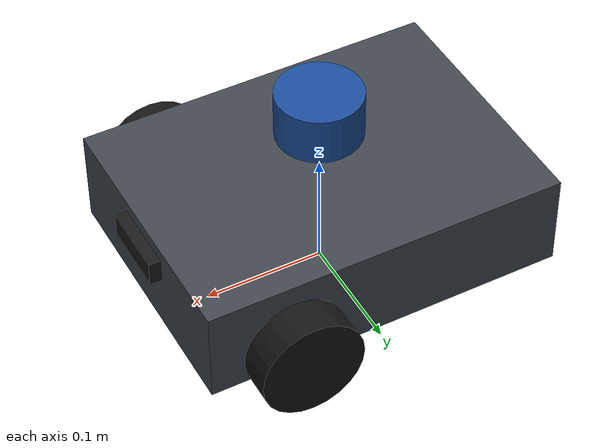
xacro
<?xml version="1.0"?>
<robot xmlns:xacro="http://www.ros.org/wiki/xacro" name="roboto">

  <!-- === Geometrie, d'apres la nomenclature ============================== -->

  <xacro:property name="wheel_radius" value="0.0425"/>   <!-- roues de 85 mm -->
  <xacro:property name="wheel_width" value="0.03"/>
  <xacro:property name="wheel_mass" value="0.15"/>
  <xacro:property name="wheel_separation" value="0.25"/>
  <xacro:property name="wheel_offset_x" value="0.08"/>

  <xacro:property name="chassis_length" value="0.30"/>
  <xacro:property name="chassis_width" value="0.22"/>
  <xacro:property name="chassis_height" value="0.08"/>
  <!-- Chassis, calculateur, microcontroleur, driver et batterie. -->
  <xacro:property name="chassis_mass" value="2.6"/>

  <xacro:property name="caster_radius" value="0.02"/>
  <xacro:property name="caster_mass" value="0.05"/>
  <xacro:property name="caster_offset_x" value="-0.10"/>

  <xacro:property name="lidar_height" value="0.09"/>
  <!-- `pi` est fourni par xacro : le redefinir provoque un avertissement. -->
  <xacro:property name="half_turn" value="${pi / 2.0}"/>

  <!-- === Macros d'inertie ================================================= -->

  <xacro:macro name="box_inertia" params="mass x y z">
    <inertial>
      <mass value="${mass}"/>
      <inertia
        ixx="${mass * (y*y + z*z) / 12.0}" ixy="0.0" ixz="0.0"
        iyy="${mass * (x*x + z*z) / 12.0}" iyz="0.0"
        izz="${mass * (x*x + y*y) / 12.0}"/>
    </inertial>
  </xacro:macro>

  <xacro:macro name="cylinder_inertia" params="mass radius length">
    <inertial>
      <mass value="${mass}"/>
      <inertia
        ixx="${mass * (3.0*radius*radius + length*length) / 12.0}" ixy="0.0" ixz="0.0"
        iyy="${mass * (3.0*radius*radius + length*length) / 12.0}" iyz="0.0"
        izz="${mass * radius * radius / 2.0}"/>
    </inertial>
  </xacro:macro>

  <xacro:macro name="sphere_inertia" params="mass radius">
    <inertial>
      <mass value="${mass}"/>
      <inertia
        ixx="${2.0 * mass * radius * radius / 5.0}" ixy="0.0" ixz="0.0"
        iyy="${2.0 * mass * radius * radius / 5.0}" iyz="0.0"
        izz="${2.0 * mass * radius * radius / 5.0}"/>
    </inertial>
  </xacro:macro>

  <!-- === Chassis ========================================================== -->

  <!-- Repere projete au sol, sous l'axe des roues. Nav2 et la pile TF s'y attendent. -->
  <link name="base_footprint"/>

  <joint name="base_joint" type="fixed">
    <parent link="base_footprint"/>
    <child link="base_link"/>
    <origin xyz="0 0 ${wheel_radius + 0.02}" rpy="0 0 0"/>
  </joint>

  <link name="base_link">
    <visual>
      <geometry>
        <box size="${chassis_length} ${chassis_width} ${chassis_height}"/>
      </geometry>
      <material name="chassis_grey">
        <color rgba="0.25 0.27 0.30 1.0"/>
      </material>
    </visual>
    <collision>
      <geometry>
        <box size="${chassis_length} ${chassis_width} ${chassis_height}"/>
      </geometry>
    </collision>
    <xacro:box_inertia mass="${chassis_mass}"
                       x="${chassis_length}" y="${chassis_width}" z="${chassis_height}"/>
  </link>

  <!-- === Roues motrices =================================================== -->

  <xacro:macro name="drive_wheel" params="prefix side">
    <link name="${prefix}_wheel_link">
      <visual>
        <origin xyz="0 0 0" rpy="${half_turn} 0 0"/>
        <geometry>
          <cylinder radius="${wheel_radius}" length="${wheel_width}"/>
        </geometry>
        <material name="wheel_black">
          <color rgba="0.08 0.08 0.08 1.0"/>
        </material>
      </visual>
      <collision>
        <origin xyz="0 0 0" rpy="${half_turn} 0 0"/>
        <geometry>
          <cylinder radius="${wheel_radius}" length="${wheel_width}"/>
        </geometry>
      </collision>
      <xacro:cylinder_inertia mass="${wheel_mass}"
                              radius="${wheel_radius}" length="${wheel_width}"/>
    </link>

    <joint name="${prefix}_wheel_joint" type="continuous">
      <parent link="base_link"/>
      <child link="${prefix}_wheel_link"/>
      <origin xyz="${wheel_offset_x} ${side * wheel_separation / 2.0} -0.02" rpy="0 0 0"/>
      <axis xyz="0 1 0"/>
    </joint>

    <gazebo reference="${prefix}_wheel_link">
      <!-- Adherence franche : une roue motrice qui patine fausse l'odometrie. -->
      <mu1>1.2</mu1>
      <mu2>1.2</mu2>
      <material>Gazebo/Black</material>
    </gazebo>
  </xacro:macro>

  <xacro:drive_wheel prefix="left" side="1"/>
  <xacro:drive_wheel prefix="right" side="-1"/>

  <!-- === Roulette folle =================================================== -->

  <link name="caster_link">
    <visual>
      <geometry>
        <sphere radius="${caster_radius}"/>
      </geometry>
      <material name="caster_grey">
        <color rgba="0.5 0.5 0.5 1.0"/>
      </material>
    </visual>
    <collision>
      <geometry>
        <sphere radius="${caster_radius}"/>
      </geometry>
    </collision>
    <xacro:sphere_inertia mass="${caster_mass}" radius="${caster_radius}"/>
  </link>

  <joint name="caster_joint" type="fixed">
    <parent link="base_link"/>
    <child link="caster_link"/>
    <origin xyz="${caster_offset_x} 0 ${caster_radius - wheel_radius - 0.02}" rpy="0 0 0"/>
  </joint>

  <gazebo reference="caster_link">
    <!-- Frottement quasi nul : la roulette porte, elle ne dirige pas. -->
    <mu1>0.01</mu1>
    <mu2>0.01</mu2>
  </gazebo>

  <!-- === LiDAR ============================================================ -->

  <link name="lidar_link">
    <visual>
      <geometry>
        <cylinder radius="0.035" length="0.04"/>
      </geometry>
      <material name="lidar_blue">
        <color rgba="0.1 0.3 0.6 1.0"/>
      </material>
    </visual>
    <collision>
      <geometry>
        <cylinder radius="0.035" length="0.04"/>
      </geometry>
    </collision>
    <xacro:cylinder_inertia mass="0.19" radius="0.035" length="0.04"/>
  </link>

  <joint name="lidar_joint" type="fixed">
    <parent link="base_link"/>
    <child link="lidar_link"/>
    <origin xyz="0.0 0 ${lidar_height}" rpy="0 0 0"/>
  </joint>

  <gazebo reference="lidar_link">
    <!-- En Harmonic il n'existe pas de LiDAR CPU : `gpu_lidar` passe par le pipeline
         de rendu, d'ou le rendu logiciel dans l'image de simulation. -->
    <sensor name="lidar" type="gpu_lidar">
      <topic>/roboto/scan</topic>
      <update_rate>10</update_rate>
      <always_on>true</always_on>
      <visualize>true</visualize>
      <gz_frame_id>lidar_link</gz_frame_id>
      <lidar>
        <scan>
          <horizontal>
            <samples>360</samples>
            <resolution>1</resolution>
            <min_angle>-${pi}</min_angle>
            <max_angle>${pi}</max_angle>
          </horizontal>
        </scan>
        <!-- Caracteristiques du RPLIDAR C1 : 12 m de portee, 5 cm de zone aveugle. -->
        <range>
          <min>0.05</min>
          <max>12.0</max>
          <resolution>0.01</resolution>
        </range>
        <noise>
          <type>gaussian</type>
          <mean>0.0</mean>
          <stddev>0.01</stddev>
        </noise>
      </lidar>
    </sensor>
  </gazebo>

  <!-- === Centrale inertielle ============================================== -->

  <link name="imu_link">
    <xacro:box_inertia mass="0.01" x="0.02" y="0.02" z="0.005"/>
  </link>

  <joint name="imu_joint" type="fixed">
    <parent link="base_link"/>
    <child link="imu_link"/>
    <origin xyz="0 0 0.01" rpy="0 0 0"/>
  </joint>

  <gazebo reference="imu_link">
    <sensor name="imu" type="imu">
      <topic>/roboto/imu</topic>
      <update_rate>100</update_rate>
      <always_on>true</always_on>
      <gz_frame_id>imu_link</gz_frame_id>
    </sensor>
  </gazebo>

  <!-- === Camera =========================================================== -->

  <link name="camera_link">
    <visual>
      <geometry>
        <box size="0.02 0.06 0.02"/>
      </geometry>
      <material name="camera_dark">
        <color rgba="0.1 0.1 0.1 1.0"/>
      </material>
    </visual>
    <xacro:box_inertia mass="0.05" x="0.02" y="0.06" z="0.02"/>
  </link>

  <joint name="camera_joint" type="fixed">
    <parent link="base_link"/>
    <child link="camera_link"/>
    <origin xyz="${chassis_length / 2.0} 0 0.02" rpy="0 0 0"/>
  </joint>

  <gazebo reference="camera_link">
    <sensor name="camera" type="camera">
      <topic>/roboto/camera</topic>
      <update_rate>15</update_rate>
      <always_on>true</always_on>
      <gz_frame_id>camera_link</gz_frame_id>
      <camera>
        <horizontal_fov>1.047</horizontal_fov>
        <image>
          <width>640</width>
          <height>480</height>
          <format>R8G8B8</format>
        </image>
        <clip>
          <near>0.1</near>
          <far>20.0</far>
        </clip>
      </camera>
    </sensor>
  </gazebo>

  <!-- === Systemes Gazebo ================================================== -->

  <gazebo>
    <plugin filename="gz-sim-diff-drive-system" name="gz::sim::systems::DiffDrive">
      <left_joint>left_wheel_joint</left_joint>
      <right_joint>right_wheel_joint</right_joint>
      <wheel_separation>${wheel_separation}</wheel_separation>
      <wheel_radius>${wheel_radius}</wheel_radius>
      <odom_publish_frequency>50</odom_publish_frequency>
      <topic>/roboto/cmd_vel</topic>
      <odom_topic>/roboto/odom</odom_topic>
      <tf_topic>/roboto/tf</tf_topic>
      <frame_id>odom</frame_id>
      <child_frame_id>base_footprint</child_frame_id>
    </plugin>

    <plugin filename="gz-sim-joint-state-publisher-system"
            name="gz::sim::systems::JointStatePublisher">
      <topic>/roboto/joint_states</topic>
    </plugin>
  </gazebo>

</robot>
